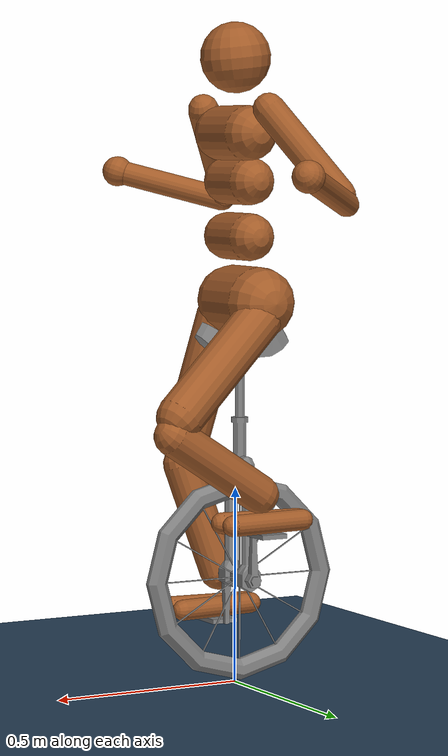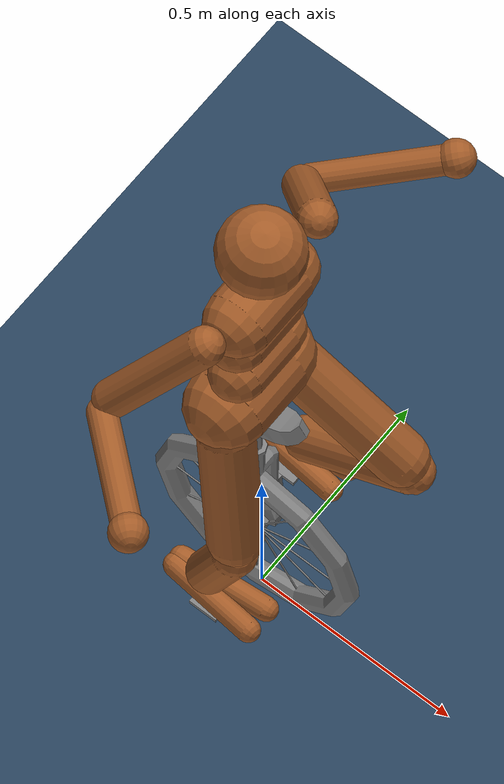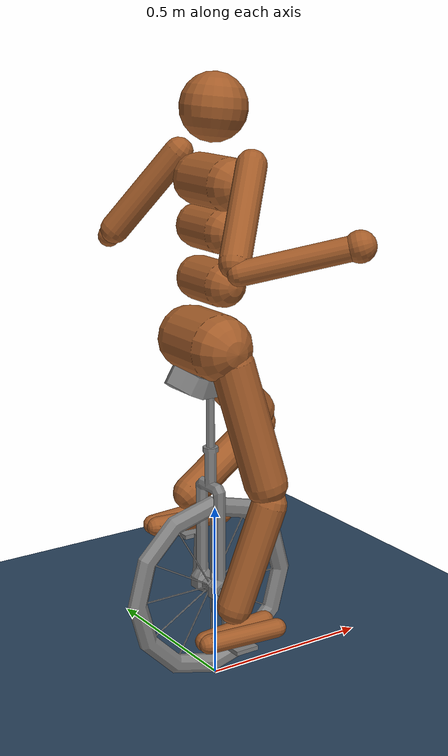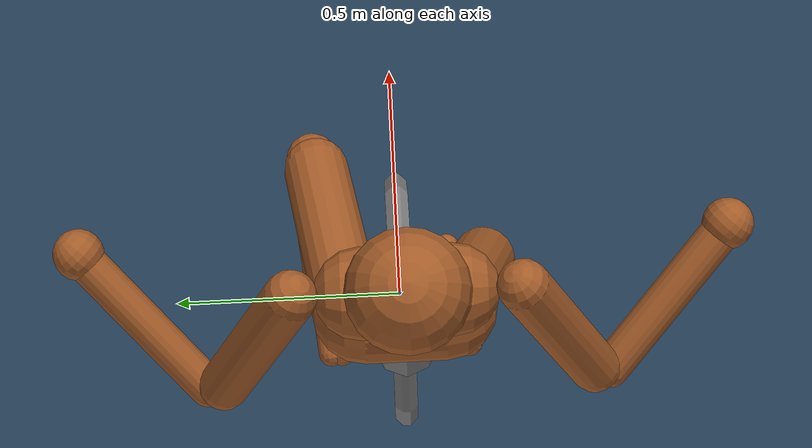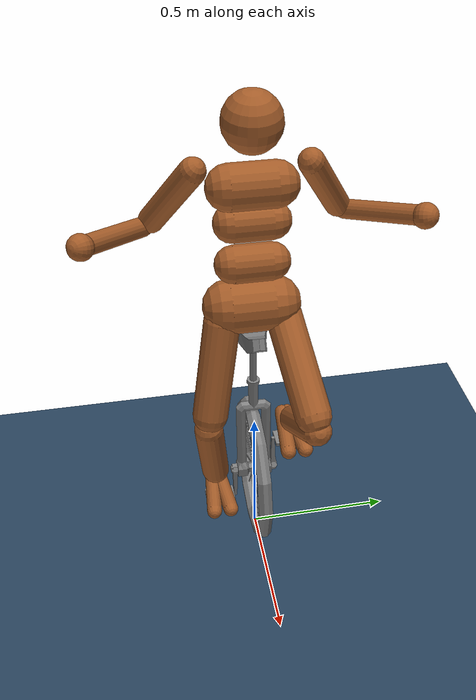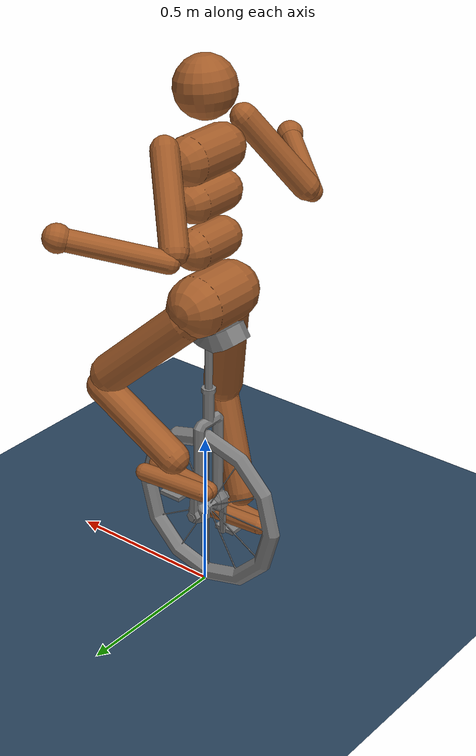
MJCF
<?xml version='1.0' encoding='utf-8'?>
<mujoco model="Humanoid">
  <compiler angle="radian" />

  <option timestep="0.005" />

  <visual>
    <global azimuth="120" elevation="-20" offwidth="2560" offheight="1440" />
    <map force="0.1" zfar="30" />
  </visual>

  <statistic center="0 0 0.7" />

  <asset>
    <texture type="skybox" colorspace="auto" name="texture_0_" builtin="gradient" rgb1="0.3 0.5 0.7" rgb2="0 0 0" width="32" height="192" />
    <texture type="cube" colorspace="auto" name="body" builtin="flat" mark="cross" rgb1="0.8 0.6 0.4" rgb2="0.8 0.6 0.4" markrgb="1 1 1" width="128" height="768" />
    <texture type="2d" colorspace="auto" name="grid" builtin="checker" rgb1="0.1 0.2 0.3" rgb2="0.2 0.3 0.4" width="512" height="512" />
    <material name="body" texture="body" texuniform="true" rgba="0.8 0.6 0.4 1" />
    <material name="grid" texture="grid" texuniform="true" reflectance="0.2" />
    <mesh name="seat" file="unicycle/seat.obj" />
    <mesh name="shaft" file="unicycle/shaft.obj" />
    <mesh name="wheel_crank_mesh" file="unicycle/wheel_crank_mesh.obj" />
  </asset>

  <worldbody>
    <geom name="floor" size="0 0 0.05" type="plane" material="grid" />
    <light name="spotlight" target="torso" pos="0 -6 4" dir="0 0 -1" cutoff="30" diffuse="0.8 0.8 0.8" mode="targetbodycom" />
    <light name="top" pos="0 0 2" dir="0 0 -1" mode="trackcom" />

    <body name="wheel_and_crank" pos="-0.0131 0 0.27">
      <joint name="root" type="free" />
      <geom name="wheel_and_crank" type="mesh" contype="0" conaffinity="0" mesh="wheel_crank_mesh" />
      <geom name="wheel_collision" size="0.267329 0.057815 0.267329" type="ellipsoid" rgba="1 0 0 0" />
      <body name="left_pedal" pos="0 0.1288 0.126">
        <joint name="left_pedal" pos="0 0 0" axis="0 -1 0" limited="false" range="0 3.14159" actuatorfrclimited="false" />
        <geom name="left_pedal" size="0.03537 0.052699 0.005951" type="box" contype="0" conaffinity="0" />
      </body>
      <body name="right_pedal" pos="0 -0.1288 -0.126">
        <joint name="right_pedal" pos="0 0 0" axis="0 -1 0" limited="false" range="0 3.14159" actuatorfrclimited="false" />
        <geom name="right_pedal" size="0.03537 0.052699 0.005951" type="box" contype="0" conaffinity="0" />
      </body>
      <body name="shaft" pos="0 0 0.2695">
        <!-- wheel joint lives on the new child `shaft` (was on wheel_and_crank).
             Axis flipped (0 -1 0) so that angle θ and gear sign carry over. -->
        <joint name="wheel" pos="0 0 -0.2695" axis="0 -1 0" limited="false" actuatorfrclimited="false" />
        <geom name="shaft" type="mesh" contype="0" conaffinity="0" mesh="shaft" />
        <body name="seat" pos="-0.005 0 0.3401">
          <!-- No joint between shaft and seat: they were rigidly attached in the
               original model as well (shaft was a child of seat without a joint). -->
          <geom name="seat" type="mesh" contype="0" conaffinity="0" mesh="seat" />
          <body name="pelvis" pos="0.0081 0 0.0954">
            <!-- pelvis_y/x were on `seat` originally; now on `pelvis` (new child).
                 Axes negated to preserve angle, range, and actuator sign. -->
            <joint name="pelvis_y" pos="-0.02 0 0" axis="0 -1 0" limited="false" actuatorfrclimited="false" />
            <joint name="pelvis_x" pos="-0.02 0 0" axis="-1 0 0" limited="false" actuatorfrclimited="false" />
            <geom name="butt" size="0.09 0.07" pos="-0.02 0 0" quat="0.707107 0.707107 0 0" type="capsule" condim="1" group="1" friction="0.7" solref="0.015" solimp="0.9 0.99 0.003" material="body" />
            <body name="thigh_right" pos="8.38191e-09 -0.1 -0.04" quat="0.939078 -0.0648169 -0.120567 -0.315269">
              <joint name="hip_x_right" pos="0 0 0" axis="1 0 0" solimplimit="0 0.99 0.01" stiffness="10" limited="true" range="-0.523599 0.174533" armature="0.01" damping="5" />
              <joint name="hip_z_right" pos="0 0 0" axis="0 0 1" solimplimit="0 0.99 0.01" stiffness="10" limited="true" range="-1.0472 0.610865" armature="0.01" damping="5" />
              <joint name="hip_y_right" pos="0 0 0" axis="0 1 0" solimplimit="0 0.99 0.01" stiffness="10" limited="true" range="-2.61799 0.349066" armature="0.01" damping="5" />
              <geom name="thigh_right" size="0.06 0.170074" pos="0 0.005 -0.17" quat="0.999892 0.0147011 0 0" type="capsule" condim="1" group="1" friction="0.7" solref="0.015" solimp="0.9 0.99 0.003" material="body" />
              <body name="shin_right" pos="-0.00635949 0.00921617 -0.398946" quat="0.949332 0.00101535 0.286737 0.128644">
                <joint name="knee_right" pos="0 0 0.02" axis="0 -1 0" solimplimit="0 0.99 0.01" stiffness="1" limited="true" range="-2.21715 0.610289" armature="0.01" damping="0.2" />
                <geom name="shin_right" size="0.049 0.15" pos="0 0 -0.15" type="capsule" condim="1" group="1" friction="0.7" solref="0.015" solimp="0.9 0.99 0.003" material="body" />
                <body name="foot_right" pos="0.0116148 0.00234315 -0.388982" quat="0.966692 -0.0143102 -0.162825 0.196951">
                  <joint name="ankle_y_right" pos="0 0 0.08" axis="0 1 0" solimplimit="0 0.99 0.01" stiffness="6" limited="true" range="-0.732884 1.36152" armature="0.01" damping="0.2" />
                  <joint name="ankle_x_right" pos="0 0 0.04" axis="0.894427 0 0.447214" solimplimit="0 0.99 0.01" stiffness="3" limited="true" range="-0.872665 0.872665" armature="0.01" damping="0.2" />
                  <geom name="foot1_right" size="0.027 0.105475" pos="0.035 -0.02 0" quat="0.707107 -0.0670402 -0.703922 0" type="capsule" condim="1" group="1" friction="0.7" solref="0.015" solimp="0.9 0.99 0.003" material="body" />
                  <geom name="foot2_right" size="0.027 0.105475" pos="0.035 0.02 0" quat="0.707107 0.0670402 -0.703922 0" type="capsule" condim="1" group="1" friction="0.7" solref="0.015" solimp="0.9 0.99 0.003" material="body" />
                </body>
              </body>
            </body>
            <body name="thigh_left" pos="4.47035e-08 0.1 -0.0400003" quat="0.911995 0.0719339 -0.400062 0.0551492">
              <joint name="hip_x_left" pos="0 0 0" axis="-1 0 0" solimplimit="0 0.99 0.01" stiffness="10" limited="true" range="-0.523599 0.174533" armature="0.01" damping="5" />
              <joint name="hip_z_left" pos="0 0 0" axis="0 0 -1" solimplimit="0 0.99 0.01" stiffness="10" limited="true" range="-1.0472 0.610865" armature="0.01" damping="5" />
              <joint name="hip_y_left" pos="0 0 0" axis="0 1 0" solimplimit="0 0.99 0.01" stiffness="10" limited="true" range="-2.61799 0.349066" armature="0.01" damping="5" />
              <geom name="thigh_left" size="0.06 0.170074" pos="0 -0.005 -0.17" quat="0.999892 -0.0147011 0 0" type="capsule" condim="1" group="1" friction="0.7" solref="0.015" solimp="0.9 0.99 0.003" material="body" />
              <body name="shin_left" pos="-0.0178097 -0.00970205 -0.389095" quat="0.607004 -0.017243 0.793979 -0.0290931">
                <joint name="knee_left" pos="0 0 0.02" axis="0 -1 0" solimplimit="0 0.99 0.01" stiffness="1" limited="true" range="-0.948467 1.87897" armature="0.01" damping="0.2" />
                <geom name="shin_left" size="0.049 0.15" pos="0 0 -0.15" type="capsule" condim="1" group="1" friction="0.7" solref="0.015" solimp="0.9 0.99 0.003" material="body" />
                <body name="foot_left" pos="0.0328847 -0.00254003 -0.381537" quat="0.874073 0.00421001 -0.482402 -0.0571591">
                  <joint name="ankle_y_left" pos="0 0 0.08" axis="0 1 0" solimplimit="0 0.99 0.01" stiffness="6" limited="true" range="-0.044683 2.04972" armature="0.01" damping="0.2" />
                  <joint name="ankle_x_left" pos="0 0 0.04" axis="-0.894427 0 -0.447214" solimplimit="0 0.99 0.01" stiffness="3" limited="true" range="-0.872665 0.872665" armature="0.01" damping="0.2" />
                  <geom name="foot1_left" size="0.027 0.105475" pos="0.035 -0.02 0" quat="0.707107 -0.0670402 -0.703922 0" type="capsule" condim="1" group="1" friction="0.7" solref="0.015" solimp="0.9 0.99 0.003" material="body" />
                  <geom name="foot2_left" size="0.027 0.105475" pos="0.035 0.02 0" quat="0.707107 0.0670402 -0.703922 0" type="capsule" condim="1" group="1" friction="0.7" solref="0.015" solimp="0.9 0.99 0.003" material="body" />
                </body>
              </body>
            </body>
            <body name="waist_lower" pos="0 0 0.165">
              <!-- abdomen_x was on pelvis; now on waist_lower. Axis negated. -->
              <joint name="abdomen_x" pos="0 0 -0.065" axis="-1 0 0" solimplimit="0 0.99 0.01" stiffness="10" limited="true" range="-0.610865 0.610865" armature="0.01" damping="5" />
              <geom name="waist_lower" size="0.06 0.06" quat="0.707107 0.707107 0 0" type="capsule" condim="1" group="1" friction="0.7" solref="0.015" solimp="0.9 0.99 0.003" material="body" />
              <body name="torso" pos="0.01 0 0.26">
                <!-- abdomen_y/z were on waist_lower; now on torso. Axes negated. -->
                <joint name="abdomen_y" pos="-0.01 0 -0.195" axis="0 -1 0" ref="-0.42649" solimplimit="0 0.99 0.01" stiffness="10" limited="true" range="-1.309 0.523599" armature="0.01" damping="5" />
                <joint name="abdomen_z" pos="-0.01 0 -0.195" axis="0 0 -1" solimplimit="0 0.99 0.01" stiffness="20" limited="true" range="-0.785398 0.785398" armature="0.01" damping="5" />
                <geom name="torso" size="0.07 0.07" quat="0.707107 0.707107 0 0" type="capsule" condim="1" group="1" friction="0.7" solref="0.015" solimp="0.9 0.99 0.003" material="body" />
                <geom name="waist_upper" size="0.06 0.06" pos="-0.01 0 -0.12" quat="0.707107 0.707107 0 0" type="capsule" condim="1" group="1" friction="0.7" solref="0.015" solimp="0.9 0.99 0.003" material="body" />
                <camera name="back" pos="-3 0 1" quat="0.601501 0.371748 -0.371748 -0.601501" mode="trackcom" />
                <camera name="side" pos="0 -3 1" quat="0.850651 0.525731 0 0" mode="trackcom" />
                <body name="head" pos="-1.49012e-08 0 0.19" quat="-0.0575111 0 0.998345 0">
                  <geom name="head" size="0.09" condim="1" group="1" friction="0.7" solref="0.015" solimp="0.9 0.99 0.003" material="body" />
                  <camera name="egocentric" pos="0.09 0 0" quat="0.524286 0.474472 -0.474472 -0.524286" fovy="80" />
                </body>
                <body name="upper_arm_right" pos="5.96046e-08 -0.17 0.0600003" quat="0.824564 0.121694 0.296208 -0.466418">
                  <joint name="shoulder1_right" pos="0 0 0" axis="0.816497 0.408248 0.408248" solimplimit="0 0.99 0.01" stiffness="1" limited="true" range="-1.48353 1.0472" armature="0.01" damping="0.2" />
                  <joint name="shoulder2_right" pos="0 0 0" axis="0 -0.707107 0.707107" solimplimit="0 0.99 0.01" stiffness="1" limited="true" range="-1.48353 1.0472" armature="0.01" damping="0.2" />
                  <geom name="upper_arm_right" size="0.04 0.138564" pos="0.08 -0.08 -0.08" quat="0.888074 -0.325058 -0.325058 0" type="capsule" condim="1" group="1" friction="0.7" solref="0.015" solimp="0.9 0.99 0.003" material="body" />
                  <body name="lower_arm_right" pos="0.18 -0.18 -0.18" quat="0.980809 0.187682 -0.0272997 -0.0451997">
                    <joint name="elbow_right" pos="0 0 0" axis="0 -0.707107 0.707107" solimplimit="0 0.99 0.01" limited="true" range="-1.74533 0.872665" armature="0.01" damping="0.2" />
                    <geom name="lower_arm_right" size="0.031 0.138564" pos="0.09 0.09 0.09" quat="0.459701 0.627963 -0.627963 0" type="capsule" condim="1" group="1" friction="0.7" solref="0.015" solimp="0.9 0.99 0.003" material="body" />
                    <body name="hand_right" pos="0.18 0.18 0.18" quat="0.99907 0.0366211 -0.0227029 0.00127454">
                      <geom name="hand_right" size="0.04" quat="0.888074 -0.325058 0.325058 0" condim="1" group="1" friction="0.7" solref="0.015" solimp="0.9 0.99 0.003" material="body" />
                    </body>
                  </body>
                </body>
                <body name="upper_arm_left" pos="1.04308e-07 0.17 0.0600001" quat="0.824564 -0.121694 0.296208 0.466418">
                  <joint name="shoulder1_left" pos="0 0 0" axis="-0.816497 0.408248 -0.408248" solimplimit="0 0.99 0.01" stiffness="1" limited="true" range="-1.48353 1.0472" armature="0.01" damping="0.2" />
                  <joint name="shoulder2_left" pos="0 0 0" axis="0 -0.707107 -0.707107" solimplimit="0 0.99 0.01" stiffness="1" limited="true" range="-1.48353 1.0472" armature="0.01" damping="0.2" />
                  <geom name="upper_arm_left" size="0.04 0.138564" pos="0.08 0.08 -0.08" quat="0.888074 0.325058 -0.325058 0" type="capsule" condim="1" group="1" friction="0.7" solref="0.015" solimp="0.9 0.99 0.003" material="body" />
                  <body name="lower_arm_left" pos="0.18 0.18 -0.18" quat="0.980809 -0.187682 -0.0273001 0.0451995">
                    <joint name="elbow_left" pos="0 0 0" axis="0 -0.707107 -0.707107" solimplimit="0 0.99 0.01" limited="true" range="-1.74533 0.872665" armature="0.01" damping="0.2" />
                    <geom name="lower_arm_left" size="0.031 0.138564" pos="0.09 -0.09 0.09" quat="0.459701 -0.627963 -0.627963 0" type="capsule" condim="1" group="1" friction="0.7" solref="0.015" solimp="0.9 0.99 0.003" material="body" />
                    <body name="hand_left" pos="0.18 -0.18 0.18" quat="0.99907 -0.0366211 -0.022703 -0.00127455">
                      <geom name="hand_left" size="0.04" quat="0.888074 0.325058 0.325058 0" condim="1" group="1" friction="0.7" solref="0.015" solimp="0.9 0.99 0.003" material="body" />
                    </body>
                  </body>
                </body>
              </body>
            </body>
          </body>
        </body>
      </body>
    </body>
  </worldbody>

  <contact>
    <exclude name="exclude_0_" body1="waist_lower" body2="thigh_right" />
    <exclude name="exclude_1_" body1="waist_lower" body2="thigh_left" />
  </contact>

  <equality>
    <weld name="left_foot_pedal" body1="foot_left" body2="left_pedal" anchor="0 0 0" relpose="0 0 0 0 0 0 0" torquescale="1" />
    <weld name="right_foot_pedal" body1="foot_right" body2="right_pedal" anchor="0 0 0" relpose="0 0 0 0 0 0 0" torquescale="1" />
    <connect name="left_hand_fixture" body1="hand_left" body2="head" anchor="0 0 0" />
    <connect name="right_hand_fixture" body1="hand_right" body2="head" anchor="0 0 0" />
  </equality>

  <tendon>
    <fixed name="hamstring_right" limited="true" range="-0.3 2">
      <joint joint="hip_y_right" coef="0.5" />
      <joint joint="knee_right" coef="-0.5" />
    </fixed>
    <fixed name="hamstring_left" limited="true" range="-0.3 2">
      <joint joint="hip_y_left" coef="0.5" />
      <joint joint="knee_left" coef="-0.5" />
    </fixed>
  </tendon>

  <actuator>
    <general name="abdomen_z" joint="abdomen_z" ctrllimited="true" ctrlrange="-1 1" gear="40 0 0 0 0 0" />
    <general name="abdomen_y" joint="abdomen_y" ctrllimited="true" ctrlrange="-1 1" gear="40 0 0 0 0 0" />
    <general name="abdomen_x" joint="abdomen_x" ctrllimited="true" ctrlrange="-1 1" gear="40 0 0 0 0 0" />
    <general name="hip_x_right" joint="hip_x_right" ctrllimited="true" ctrlrange="-1 1" gear="40 0 0 0 0 0" />
    <general name="hip_z_right" joint="hip_z_right" ctrllimited="true" ctrlrange="-1 1" gear="40 0 0 0 0 0" />
    <general name="hip_y_right" joint="hip_y_right" ctrllimited="true" ctrlrange="-1 1" gear="120 0 0 0 0 0" />
    <general name="knee_right" joint="knee_right" ctrllimited="true" ctrlrange="-1 1" gear="80 0 0 0 0 0" />
    <general name="ankle_y_right" joint="ankle_y_right" ctrllimited="true" ctrlrange="-1 1" gear="20 0 0 0 0 0" />
    <general name="ankle_x_right" joint="ankle_x_right" ctrllimited="true" ctrlrange="-1 1" gear="20 0 0 0 0 0" />
    <general name="hip_x_left" joint="hip_x_left" ctrllimited="true" ctrlrange="-1 1" gear="40 0 0 0 0 0" />
    <general name="hip_z_left" joint="hip_z_left" ctrllimited="true" ctrlrange="-1 1" gear="40 0 0 0 0 0" />
    <general name="hip_y_left" joint="hip_y_left" ctrllimited="true" ctrlrange="-1 1" gear="120 0 0 0 0 0" />
    <general name="knee_left" joint="knee_left" ctrllimited="true" ctrlrange="-1 1" gear="80 0 0 0 0 0" />
    <general name="ankle_y_left" joint="ankle_y_left" ctrllimited="true" ctrlrange="-1 1" gear="20 0 0 0 0 0" />
    <general name="ankle_x_left" joint="ankle_x_left" ctrllimited="true" ctrlrange="-1 1" gear="20 0 0 0 0 0" />
    <general name="shoulder1_right" joint="shoulder1_right" ctrllimited="true" ctrlrange="-1 1" gear="20 0 0 0 0 0" />
    <general name="shoulder2_right" joint="shoulder2_right" ctrllimited="true" ctrlrange="-1 1" gear="20 0 0 0 0 0" />
    <general name="elbow_right" joint="elbow_right" ctrllimited="true" ctrlrange="-1 1" gear="40 0 0 0 0 0" />
    <general name="shoulder1_left" joint="shoulder1_left" ctrllimited="true" ctrlrange="-1 1" gear="20 0 0 0 0 0" />
    <general name="shoulder2_left" joint="shoulder2_left" ctrllimited="true" ctrlrange="-1 1" gear="20 0 0 0 0 0" />
    <general name="elbow_left" joint="elbow_left" ctrllimited="true" ctrlrange="-1 1" gear="40 0 0 0 0 0" />
    <general name="wheel" joint="wheel" ctrllimited="false" forcelimited="false" actlimited="false" gear="100 0 0 0 0 0" />
  </actuator>
</mujoco>
